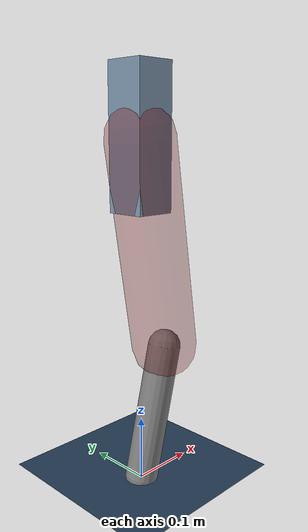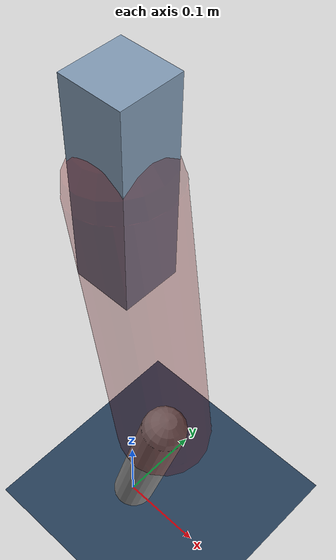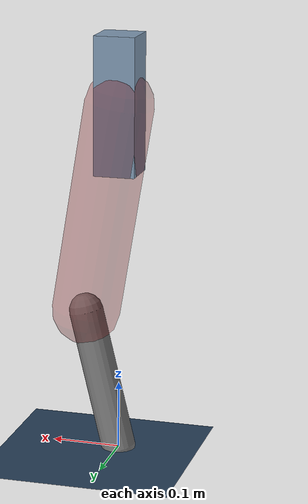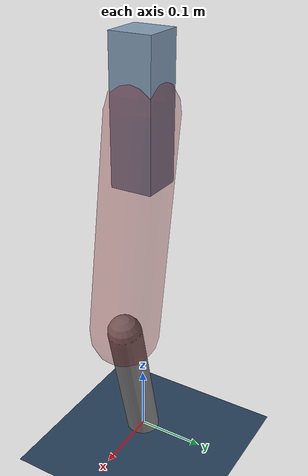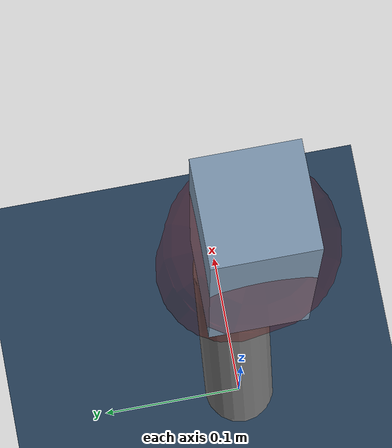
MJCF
<mujoco model="Hopper2D">
	<compiler inertiafromgeom="true" angle="radian" />
	<option timestep="0.001" integrator="implicit" cone="elliptic" solver="Newton" tolerance="1e-10" />

	<default>
		<geom contype="1" conaffinity="1" condim="3" friction="2 0.005 0.0001" solref="0.005 1" />
		<joint limited="true" damping="0.1" />
	</default>

	<asset>
		<texture name="skybox" type="skybox" builtin="gradient" rgb1=".4 .6 .8" rgb2="0 0 0" width="800" height="800" />
		<texture name="grid" type="2d" builtin="checker" rgb1=".1 .2 .3" rgb2=".2 .3 .4" width="300" height="300" mark="edge" markrgb=".2 .3 .4" />
		<material name="ground" texture="grid" texrepeat="1 1" texuniform="true" reflectance="0.1" />
		<material name="leg" rgba="0.5 0.6 0.7 1" />
	</asset>

	<worldbody>

		<geom name="floor" type="plane" size="5 5 0.25" material="ground" />

		<light directional="false" diffuse="0.8 0.8 0.8" specular="0.3 0.3 0.3" pos="0 0 2" dir="0 0 -1" />
		<light mode="targetbodycom" target="base" directional="false" diffuse="0.8 0.8 0.8" specular="0.3 0.3 0.3" pos="0 0 2" dir="0 0 -1" />

		<camera name="fixed" pos="0 -2 1" xyaxes="1 0 0 0 0 1" />
		<camera name="tracking" mode="trackcom" pos="0 -3 1" />

		<body name="root" pos="0 0 0.5155487185376906">
			<joint name="slide_x" type="slide" axis="1 0 0" range="-100 100" />
			<joint name="slide_z" type="slide" axis="0 0 1" range="0 10" />

			<body name="base" pos="0 0 0">
				<geom name="torso" type="box" size="0.03 0.03 0.1" mass="1.717" material="leg" />

				<body name="link1" pos="0 0 0" euler="0 1.409872161668312 0">
					<joint type="hinge" axis="0 -1 0" pos="0 0 0" name="hinge1" limited="true" range="-3.14 3.14" stiffness="0" damping="0.1" />
					<geom name="thigh" type="capsule" fromto="0 0 0 0.3124339116011941 0 0" size="0.05" rgba="0.5 0 0 0.3" mass="1.0225149524833435" />

					<body name="link2" pos="0.3124339116011941 0 0" euler="0 0.3980435876198452 0">
						<joint type="hinge" axis="0 -1 0" pos="0 0 0" name="hinge2" limited="true" range="-3.14 3.14" stiffness="0" damping="0.1" />
						<geom name="shank" type="capsule" fromto="0 0 0 0.21311480693649648 0 0" size="0.025" mass="0.4119033262428468" />

					</body>
				</body>
			</body>
		</body>
	</worldbody>

	<actuator>
		<motor name="torque1" joint="hinge1" ctrlrange="-21.77976663018648 21.77976663018648" ctrllimited="true" gear="1" />
		<motor name="torque2" joint="hinge2" ctrlrange="-54.68850721378715 54.68850721378715" ctrllimited="true" gear="1" />
	</actuator>
</mujoco>
